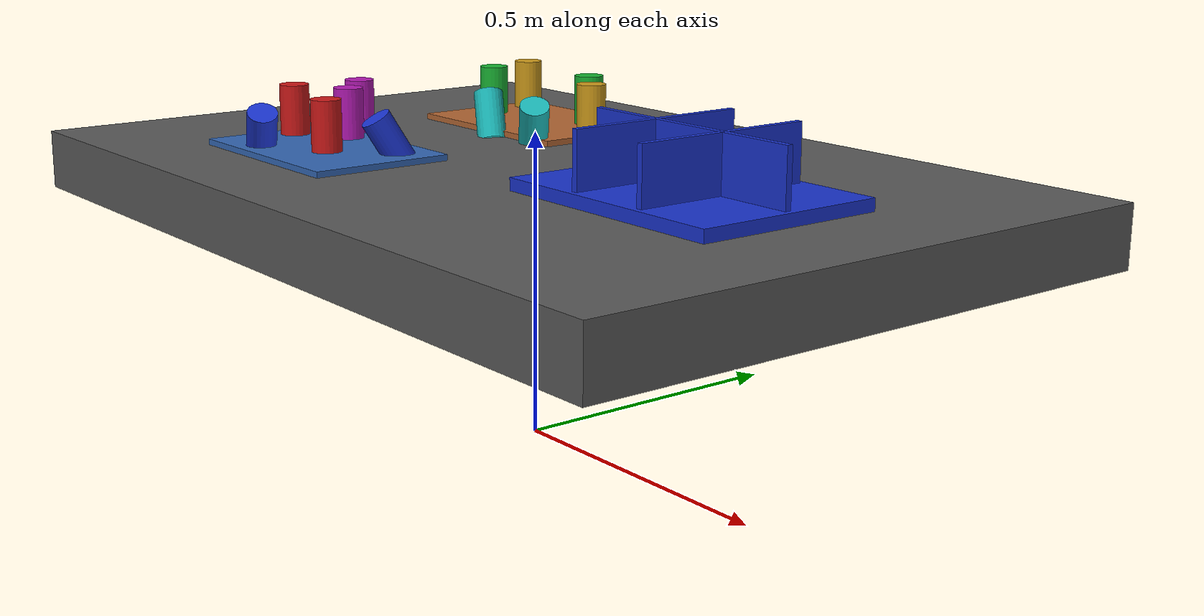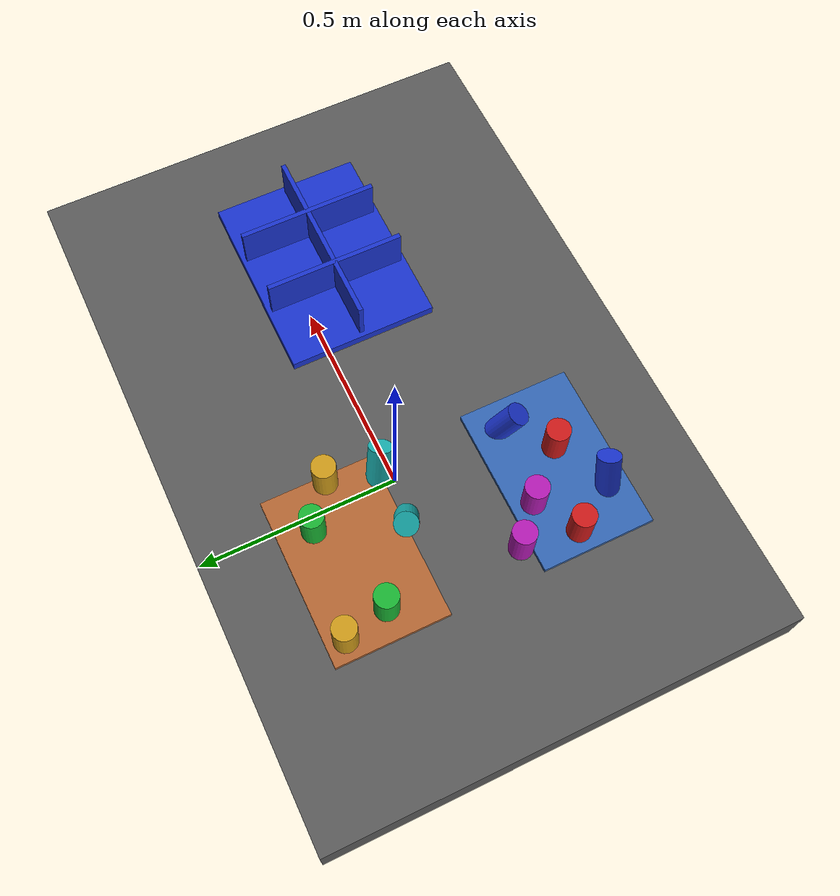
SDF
<?xml version="1.0" ?>
<sdf version="1.9">
  <!-- Standalone M1B scene.  The controller-backed Panda is spawned by the
       existing launch path; this file never alters the frozen M1A cube world. -->
  <world name="industrial_cylinder_v1">
    <physics name="bullet" type="bullet"><max_step_size>0.001</max_step_size><real_time_factor>1.0</real_time_factor></physics>
    <plugin name="gz::sim::systems::Physics" filename="gz-sim-physics-system"><engine><filename>gz-physics-bullet-featherstone-plugin</filename></engine></plugin>
    <plugin name="gz::sim::systems::UserCommands" filename="gz-sim-user-commands-system"/>
    <plugin name="gz::sim::systems::SceneBroadcaster" filename="gz-sim-scene-broadcaster-system"/>
    <plugin name="gz::sim::systems::Sensors" filename="gz-sim-sensors-system"><render_engine>ogre2</render_engine></plugin>
    <gravity>0 0 -9.81</gravity>
    <light type="directional" name="industrial_light"><pose>0 0 5 0 0 0</pose><direction>-0.3 0.2 -0.9</direction><diffuse>0.9 0.9 0.9 1</diffuse></light>
    <model name="industrial_work_table"><static>true</static><link name="link"><pose>0 0 0.4 0 0 0</pose><collision name="collision"><geometry><box><size>1.5 1.0 0.1</size></box></geometry></collision><visual name="visual"><geometry><box><size>1.5 1.0 0.1</size></box></geometry><material><diffuse>0.35 0.35 0.35 1</diffuse></material></visual></link></model>
    <model name="camera_fixture"><static>true</static><link name="camera_rgbd"><pose>-0.80 -0.80 1.40 0 0.77 0.93</pose><sensor name="front_rgbd" type="rgbd_camera"><always_on>1</always_on><update_rate>15</update_rate><topic>/xh/camera/rgbd</topic><camera><horizontal_fov>1.047</horizontal_fov><image><width>640</width><height>480</height><format>R8G8B8</format></image><clip><near>0.1</near><far>4.0</far></clip></camera></sensor></link></model>
    <model name="incoming_zone_a"><static>true</static><link name="link"><pose>-0.28 -0.22 0.455 0 0 0</pose><visual name="visual"><geometry><box><size>0.36 0.24 0.01</size></box></geometry><material><diffuse>0.2 0.4 0.7 1</diffuse></material></visual></link></model>
    <model name="incoming_zone_b"><static>true</static><link name="link"><pose>-0.28 0.22 0.455 0 0 0</pose><visual name="visual"><geometry><box><size>0.36 0.24 0.01</size></box></geometry><material><diffuse>0.7 0.4 0.2 1</diffuse></material></visual></link></model>
    <!-- M1B_RANDOM_PARTS_BEGIN -->
    <model name="cylinder_01"><pose>-0.2406 -0.2394 0.5000 0.0000 0.0000 0.1514</pose><link name="link"><inertial><mass>0.06</mass></inertial><collision name="collision"><geometry><cylinder><radius>0.025</radius><length>0.09</length></cylinder></geometry></collision><visual name="visual"><geometry><cylinder><radius>0.025</radius><length>0.09</length></cylinder></geometry><material><diffuse>0.800 0.100 0.100 1</diffuse><specular>0.15 0.15 0.15 1</specular></material></visual></link></model>
    <model name="cylinder_02"><pose>-0.3984 0.2057 0.5000 3.1416 0.0000 2.3364</pose><link name="link"><inertial><mass>0.06</mass></inertial><collision name="collision"><geometry><cylinder><radius>0.025</radius><length>0.09</length></cylinder></geometry></collision><visual name="visual"><geometry><cylinder><radius>0.025</radius><length>0.09</length></cylinder></geometry><material><diffuse>0.100 0.700 0.200 1</diffuse><specular>0.15 0.15 0.15 1</specular></material></visual></link></model>
    <model name="cylinder_03"><pose>-0.1598 -0.1703 0.4800 0.4500 -0.3000 0.2220</pose><link name="link"><inertial><mass>0.06</mass></inertial><collision name="collision"><geometry><cylinder><radius>0.025</radius><length>0.09</length></cylinder></geometry></collision><visual name="visual"><geometry><cylinder><radius>0.025</radius><length>0.09</length></cylinder></geometry><material><diffuse>0.100 0.200 0.800 1</diffuse><specular>0.15 0.15 0.15 1</specular></material></visual></link></model>
    <model name="cylinder_04"><pose>-0.1154 0.2062 0.5000 0.0000 0.0000 2.8598</pose><link name="link"><inertial><mass>0.06</mass></inertial><collision name="collision"><geometry><cylinder><radius>0.025</radius><length>0.09</length></cylinder></geometry></collision><visual name="visual"><geometry><cylinder><radius>0.025</radius><length>0.09</length></cylinder></geometry><material><diffuse>0.800 0.600 0.100 1</diffuse><specular>0.15 0.15 0.15 1</specular></material></visual></link></model>
    <model name="cylinder_05"><pose>-0.3285 -0.1449 0.5000 3.1416 0.0000 2.3019</pose><link name="link"><inertial><mass>0.06</mass></inertial><collision name="collision"><geometry><cylinder><radius>0.025</radius><length>0.09</length></cylinder></geometry></collision><visual name="visual"><geometry><cylinder><radius>0.025</radius><length>0.09</length></cylinder></geometry><material><diffuse>0.700 0.100 0.700 1</diffuse><specular>0.15 0.15 0.15 1</specular></material></visual></link></model>
    <model name="cylinder_06"><pose>-0.2601 0.0983 0.4800 0.4500 -0.3000 -1.4939</pose><link name="link"><inertial><mass>0.06</mass></inertial><collision name="collision"><geometry><cylinder><radius>0.025</radius><length>0.09</length></cylinder></geometry></collision><visual name="visual"><geometry><cylinder><radius>0.025</radius><length>0.09</length></cylinder></geometry><material><diffuse>0.100 0.700 0.700 1</diffuse><specular>0.15 0.15 0.15 1</specular></material></visual></link></model>
    <model name="cylinder_07"><pose>-0.4168 -0.1981 0.5000 0.0000 0.0000 2.9140</pose><link name="link"><inertial><mass>0.06</mass></inertial><collision name="collision"><geometry><cylinder><radius>0.025</radius><length>0.09</length></cylinder></geometry></collision><visual name="visual"><geometry><cylinder><radius>0.025</radius><length>0.09</length></cylinder></geometry><material><diffuse>0.800 0.100 0.100 1</diffuse><specular>0.15 0.15 0.15 1</specular></material></visual></link></model>
    <model name="cylinder_08"><pose>-0.1982 0.2677 0.5000 3.1416 0.0000 -0.9511</pose><link name="link"><inertial><mass>0.06</mass></inertial><collision name="collision"><geometry><cylinder><radius>0.025</radius><length>0.09</length></cylinder></geometry></collision><visual name="visual"><geometry><cylinder><radius>0.025</radius><length>0.09</length></cylinder></geometry><material><diffuse>0.100 0.700 0.200 1</diffuse><specular>0.15 0.15 0.15 1</specular></material></visual></link></model>
    <model name="cylinder_09"><pose>-0.3441 -0.3014 0.4800 0.4500 -0.3000 1.7372</pose><link name="link"><inertial><mass>0.06</mass></inertial><collision name="collision"><geometry><cylinder><radius>0.025</radius><length>0.09</length></cylinder></geometry></collision><visual name="visual"><geometry><cylinder><radius>0.025</radius><length>0.09</length></cylinder></geometry><material><diffuse>0.100 0.200 0.800 1</diffuse><specular>0.15 0.15 0.15 1</specular></material></visual></link></model>
    <model name="cylinder_10"><pose>-0.4203 0.3004 0.5000 0.0000 0.0000 -1.3351</pose><link name="link"><inertial><mass>0.06</mass></inertial><collision name="collision"><geometry><cylinder><radius>0.025</radius><length>0.09</length></cylinder></geometry></collision><visual name="visual"><geometry><cylinder><radius>0.025</radius><length>0.09</length></cylinder></geometry><material><diffuse>0.800 0.600 0.100 1</diffuse><specular>0.15 0.15 0.15 1</specular></material></visual></link></model>
    <model name="cylinder_11"><pose>-0.3988 -0.0803 0.5000 3.1416 0.0000 1.9252</pose><link name="link"><inertial><mass>0.06</mass></inertial><collision name="collision"><geometry><cylinder><radius>0.025</radius><length>0.09</length></cylinder></geometry></collision><visual name="visual"><geometry><cylinder><radius>0.025</radius><length>0.09</length></cylinder></geometry><material><diffuse>0.700 0.100 0.700 1</diffuse><specular>0.15 0.15 0.15 1</specular></material></visual></link></model>
    <model name="cylinder_12"><pose>-0.1326 0.0969 0.4800 0.4500 -0.3000 1.5379</pose><link name="link"><inertial><mass>0.06</mass></inertial><collision name="collision"><geometry><cylinder><radius>0.025</radius><length>0.09</length></cylinder></geometry></collision><visual name="visual"><geometry><cylinder><radius>0.025</radius><length>0.09</length></cylinder></geometry><material><diffuse>0.100 0.700 0.700 1</diffuse><specular>0.15 0.15 0.15 1</specular></material></visual></link></model>
    <!-- M1B_RANDOM_PARTS_END -->
    <model name="blue_partition_bin"><static>true</static><pose>0.36 0 0.45 0 0 0</pose><link name="link"><collision name="floor"><pose>0 0 0.01 0 0 0</pose><geometry><box><size>0.42 0.32 0.02</size></box></geometry></collision><visual name="floor_visual"><pose>0 0 0.01 0 0 0</pose><geometry><box><size>0.42 0.32 0.02</size></box></geometry><material><diffuse>0.1 0.2 0.8 1</diffuse></material></visual><visual name="row_divider"><pose>0 0 0.06 0 0 0</pose><geometry><box><size>0.40 0.01 0.10</size></box></geometry><material><diffuse>0.1 0.2 0.8 1</diffuse></material></visual><visual name="col_divider_a"><pose>-0.07 0 0.06 0 0 0</pose><geometry><box><size>0.01 0.30 0.10</size></box></geometry><material><diffuse>0.1 0.2 0.8 1</diffuse></material></visual><visual name="col_divider_b"><pose>0.07 0 0.06 0 0 0</pose><geometry><box><size>0.01 0.30 0.10</size></box></geometry><material><diffuse>0.1 0.2 0.8 1</diffuse></material></visual></link></model>
    <!-- Reserved only: second table, bin transport corridor, stackable-bin
         collision volume, and second arm mounting namespace. -->
  </world>
</sdf>
